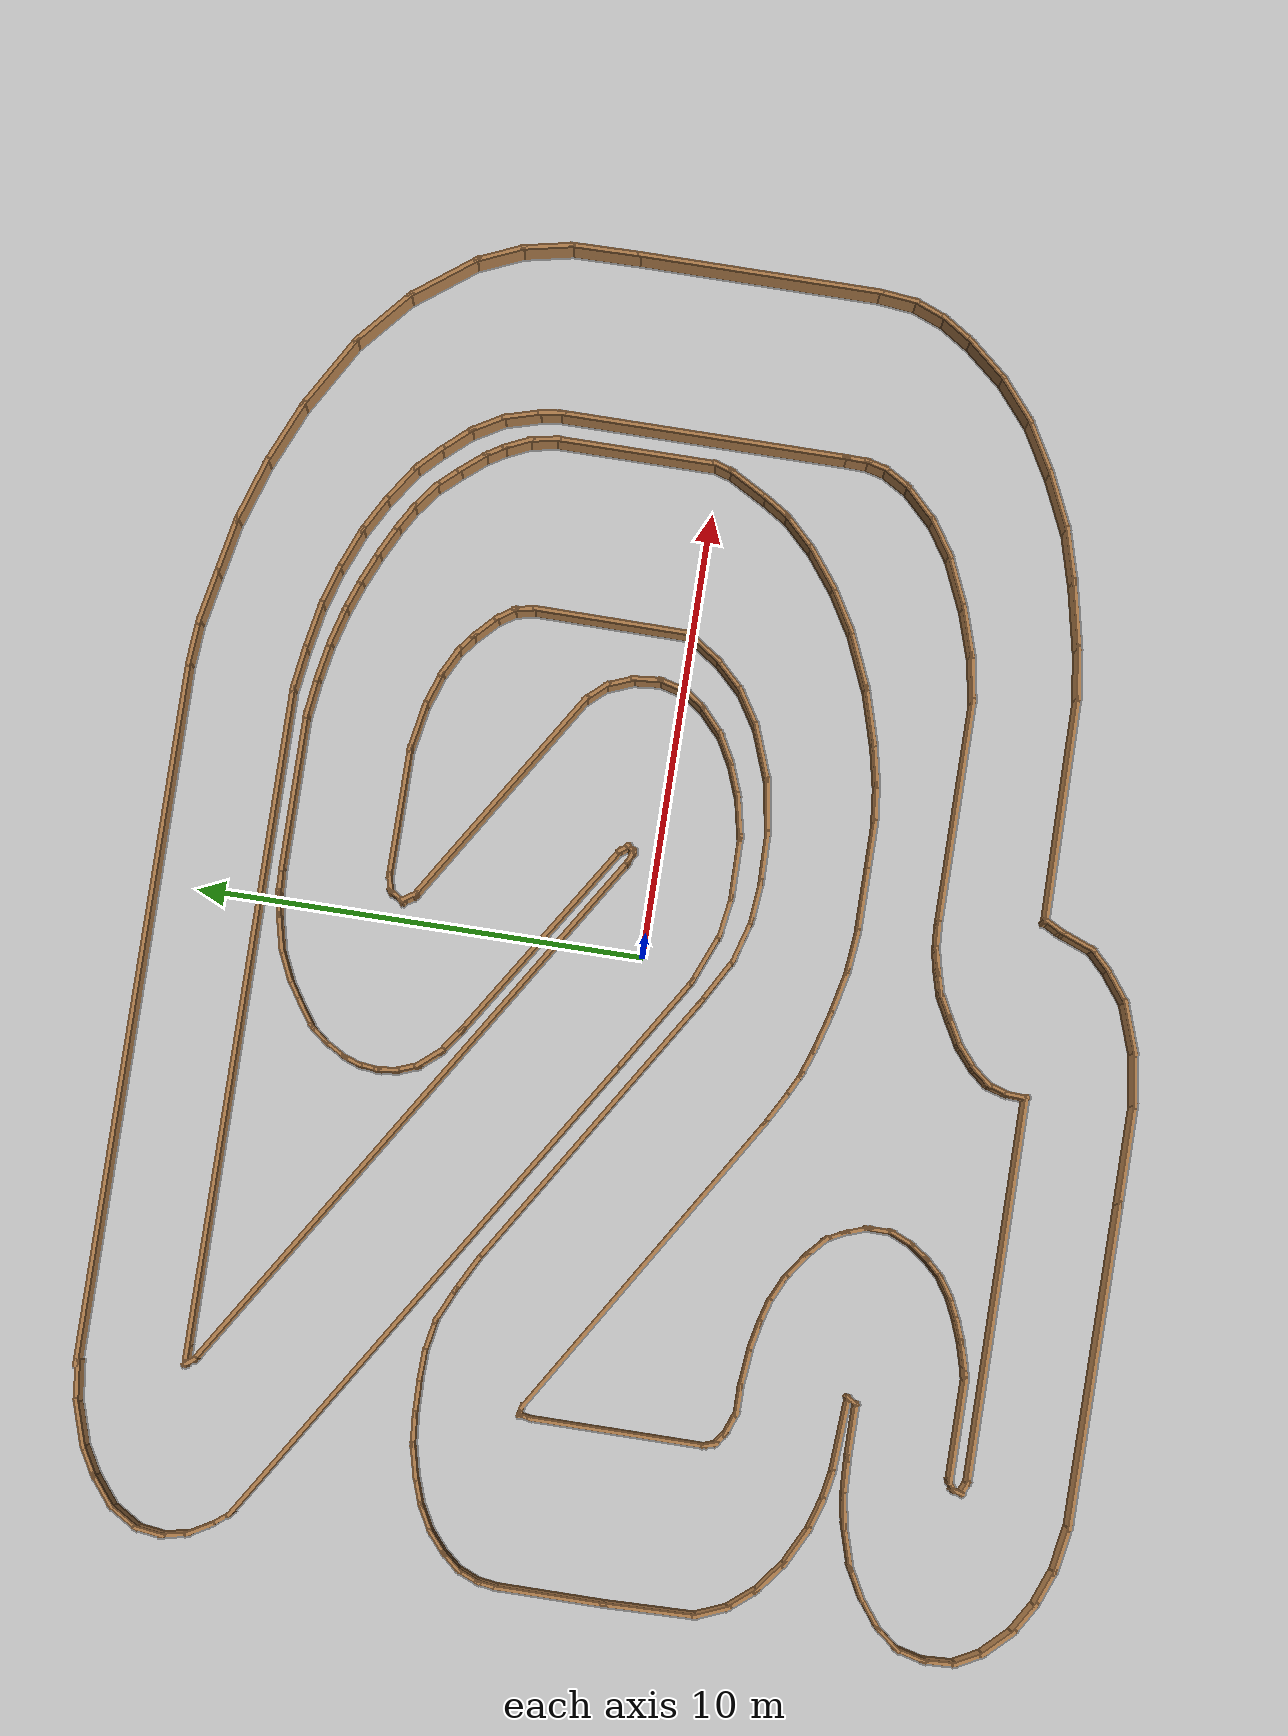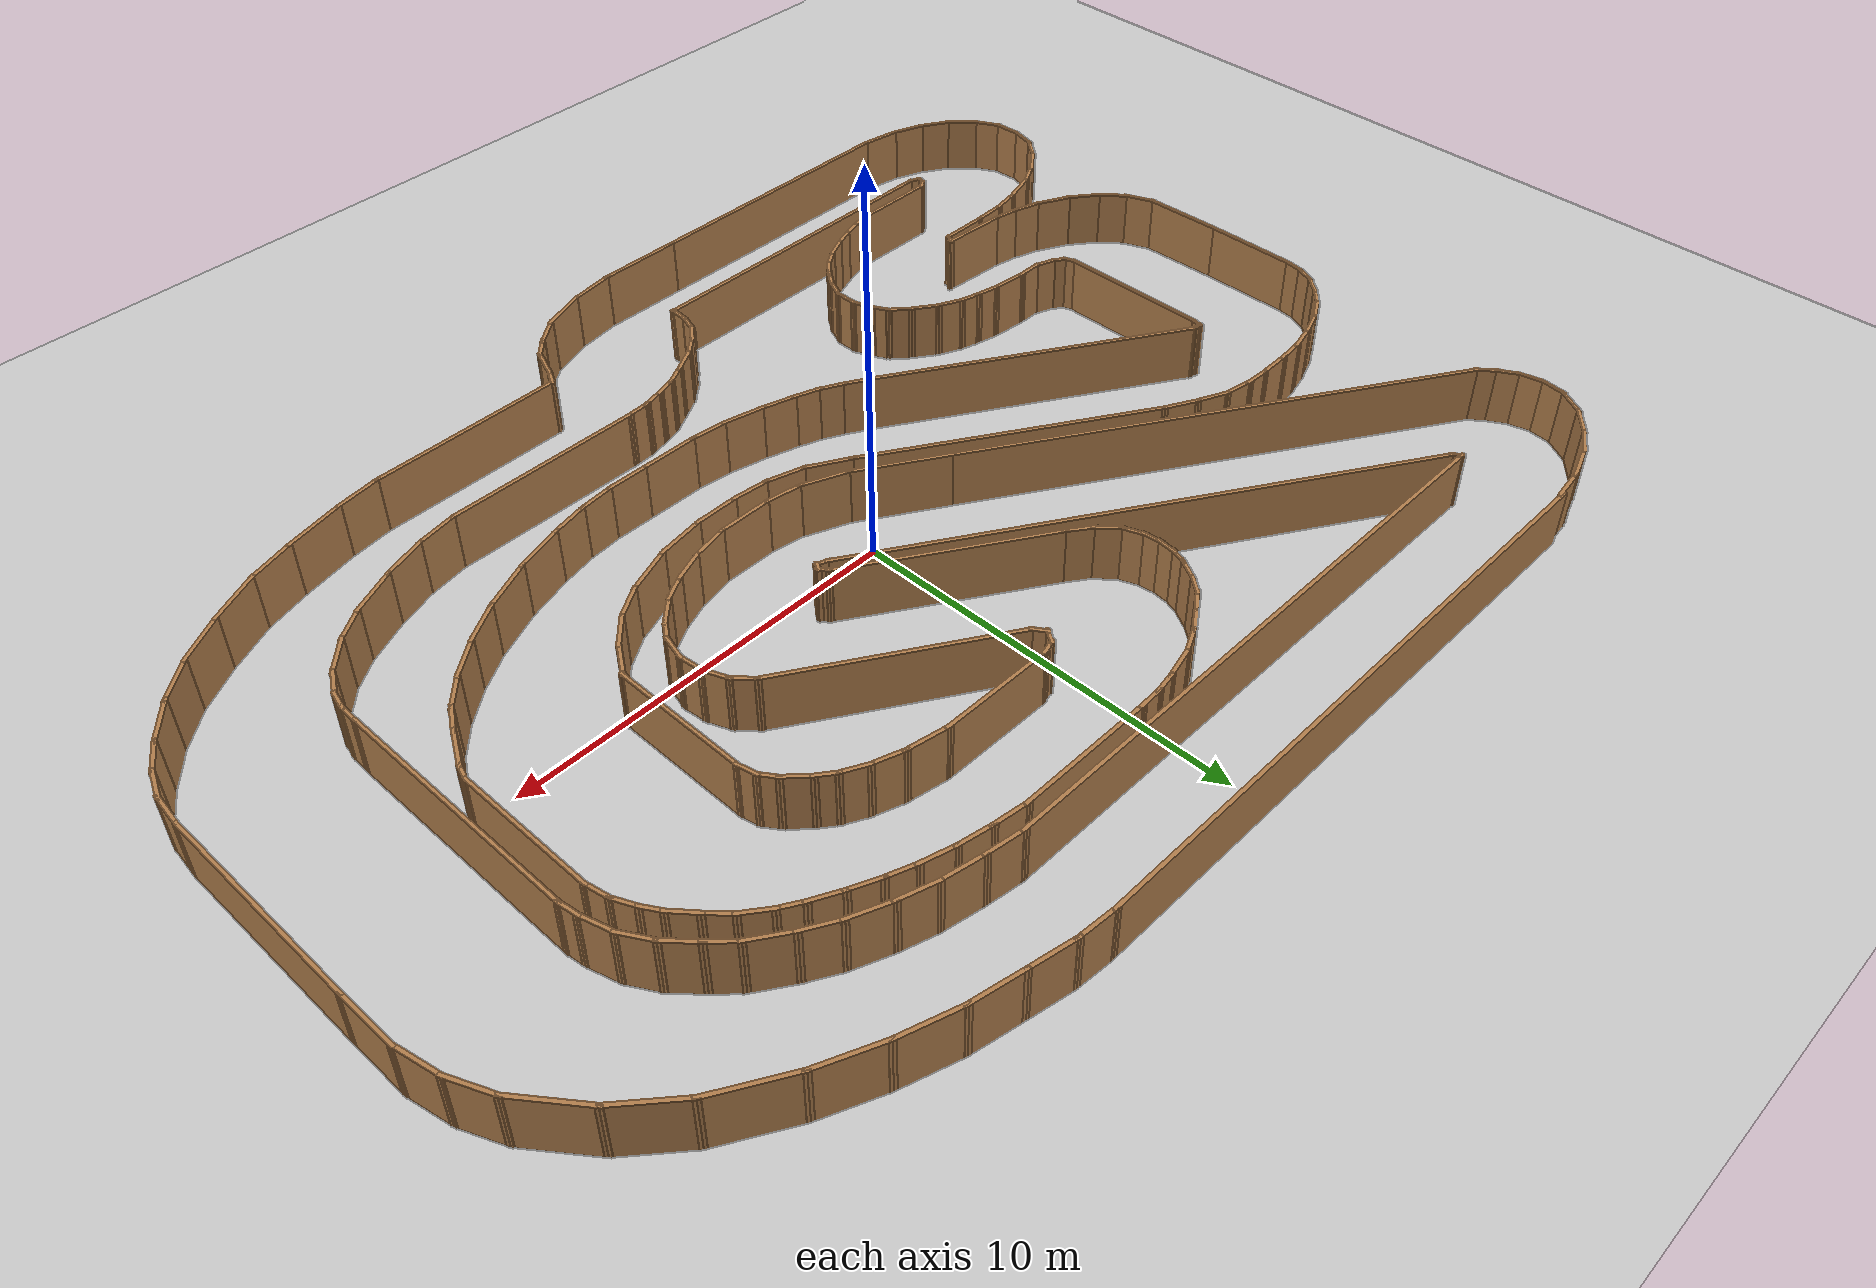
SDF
<?xml version="1.0" ?>
<sdf version="1.4">
  <!-- We use a custom world for the rrbot so that the camera angle is launched correctly -->

  <world name="default">

    <include>
      <uri>model://ground_plane</uri>
    </include>

    <include>
      <uri>model://rover_racetrack</uri>
    </include>

    <!-- Global light source -->
    <include>
      <uri>model://sun</uri>
    </include>

    <!-- Focus camera on tall pendulum -->
    <gui fullscreen='0'>
      <camera name='user_camera'>
        <pose>0.471107 3.112576 9.086079 0.000000 1.221795 -1.567757</pose>
        <view_controller>orbit</view_controller>
      </camera>
    </gui>

  </world>
</sdf>
